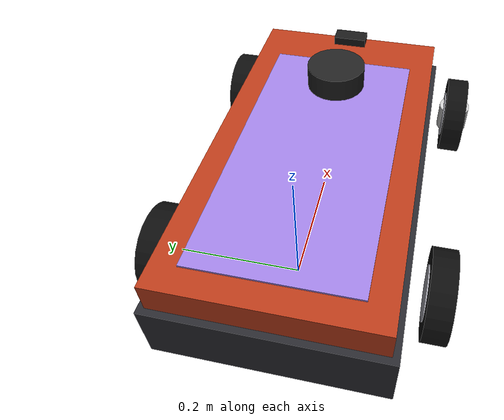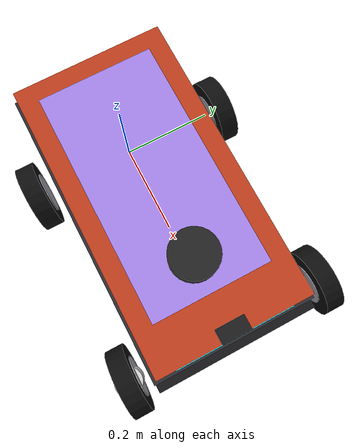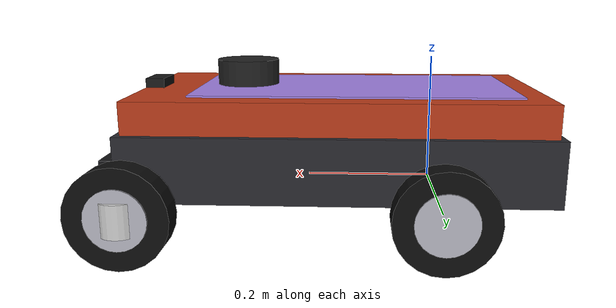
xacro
<?xml version="1.0"?>
<robot name="ackermann_robot" xmlns:xacro="http://www.ros.org/wiki/xacro">

    <xacro:include filename="robot_core_ackermann.xacro" />

    <xacro:include filename="gazebo_control_ackermann.xacro" />

    <xacro:include filename="lidar.xacro" />

    <xacro:include filename="camera.xacro" />

</robot>

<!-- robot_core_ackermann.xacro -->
<robot name="ackermann_robot" xmlns:xacro="http://www.ros.org/wiki/xacro" xmlns:gazebo="http://gazebo.apache.org/xmlns/gazebo">

  <xacro:include filename="inertial_macros.xacro" />

  <!-- Base Link -->
  <link name="base_link"/>
  <link name="base_footprint">
    <collision>
      <geometry>
        <box size="0.65 0.4 0.01"/>
      </geometry>
    </collision>
  </link>

  <joint name="base_footprint_joint" type="fixed">
    <parent link="base_link"/>
    <child link="base_footprint"/>
    <origin xyz="0 0 -0.05"/>
  </joint>

  <!-- Chassis — longer than wide, car-like -->
  <joint name="chassis_joint" type="fixed">
    <parent link="base_link"/>
    <child link="chassis"/>
    <origin xyz="-0.15 0 0"/>
  </joint>

  <link name="chassis">
    <visual>
      <origin xyz="0.3 0 0.05"/>
      <geometry><box size="0.65 0.35 0.10"/></geometry>
      <material name="skirt_material"><color rgba="0.16 0.16 0.18 1.0"/></material>
    </visual>
    <visual>
      <origin xyz="0.3 0 0.125"/>
      <geometry><box size="0.63 0.33 0.05"/></geometry>
      <material name="chassis_material"><color rgba="0.72 0.23 0.10 1.0"/></material>
    </visual>
    <visual>
      <origin xyz="0.27499999999999997 0 0.151"/>
      <geometry><box size="0.50 0.25 0.004"/></geometry>
      <material name="accent_material"><color rgba="0.62 0.50 0.88 1.0"/></material>
    </visual>
    <visual>
      <origin xyz="0.635 0 0.04"/>
      <geometry><box size="0.02 0.35 0.05"/></geometry>
      <material name="bumper_material"><color rgba="0.08 0.08 0.09 1.0"/></material>
    </visual>
    <visual>
      <origin xyz="0.616 0 0.125"/>
      <geometry><box size="0.004 0.25 0.012"/></geometry>
      <material name="led_material"><color rgba="0.1 0.9 1.0 1.0"/></material>
    </visual>
    <collision>
      <origin xyz="0.3 0 0.075"/>
      <geometry>
        <box size="0.65 0.32 0.15"/>
      </geometry>
    </collision>
    <xacro:inertial_box mass="0.6" x="0.65" y="0.35" z="0.15">
      <origin xyz="0.3 0 0.075" rpy="0 0 0"/>
    </xacro:inertial_box>
  </link>

  <!-- Rear Wheels (driven, fixed — no steering) -->
  <joint name="rear_left_wheel_joint" type="continuous">
    <parent link="base_link"/>
    <child link="rear_left_wheel"/>
    <origin xyz="0 0.225 0" rpy="-1.57 0 0"/>
    <axis xyz="0 0 1"/>
  </joint>

  <link name="rear_left_wheel">
    <visual>
      <geometry>
        <cylinder radius="0.075" length="0.04"/>
      </geometry>
      <material name="wheel_material">
        <color rgba="0.05 0.05 0.05 1.0"/>
      </material>
    </visual>
    <visual>
      <geometry><cylinder radius="0.045" length="0.044"/></geometry>
      <material name="hub_material"><color rgba="0.70 0.70 0.74 1.0"/></material>
    </visual>
    <collision>
      <geometry>
        <cylinder radius="0.075" length="0.04"/>
      </geometry>
    </collision>
    <xacro:inertial_cylinder mass="0.1" length="0.04" radius="0.075">
      <origin xyz="0 0 0" rpy="0 0 0"/>
    </xacro:inertial_cylinder>
  </link>

  <joint name="rear_right_wheel_joint" type="continuous">
    <parent link="base_link"/>
    <child link="rear_right_wheel"/>
    <origin xyz="0 -0.225 0" rpy="1.57 0 0"/>
    <axis xyz="0 0 -1"/>
  </joint>

  <link name="rear_right_wheel">
    <visual>
      <geometry>
        <cylinder radius="0.075" length="0.04"/>
      </geometry>
      <material name="wheel_material">
        <color rgba="0.05 0.05 0.05 1.0"/>
      </material>
    </visual>
    <visual>
      <geometry><cylinder radius="0.045" length="0.044"/></geometry>
      <material name="hub_material"><color rgba="0.70 0.70 0.74 1.0"/></material>
    </visual>
    <collision>
      <geometry>
        <cylinder radius="0.075" length="0.04"/>
      </geometry>
    </collision>
    <xacro:inertial_cylinder mass="0.1" length="0.04" radius="0.075">
      <origin xyz="0 0 0" rpy="0 0 0"/>
    </xacro:inertial_cylinder>
  </link>

  <joint name="front_left_steering_joint" type="revolute">
    <parent link="base_link"/>
    <child link="front_left_steering_link"/>
    <origin xyz="0.45 0.225 0"/>
    <axis xyz="0 0 1"/>
    <limit lower="-0.6" upper="0.6" effort="25" velocity="1.0"/>
  </joint>

  <link name="front_left_steering_link">
    <visual>
      <geometry>
        <cylinder radius="0.03" length="0.05"/>
      </geometry>
      <material name="wheel_material">
        <color rgba="0.8 0.8 0.8 1.0"/>
      </material>
    </visual>
    <collision>
      <geometry>
        <cylinder radius="0.03" length="0.05"/>
      </geometry>
    </collision>
    <xacro:inertial_cylinder mass="0.05" length="0.05" radius="0.03">
      <origin xyz="0 0 0" rpy="0 0 0"/>
    </xacro:inertial_cylinder>
  </link>

  <joint name="front_left_wheel_joint" type="continuous">
    <parent link="front_left_steering_link"/>
    <child link="front_left_wheel"/>
    <origin xyz="0 0 0" rpy="-1.57 0 0"/>
    <axis xyz="0 0 1"/>
  </joint>

  <link name="front_left_wheel">
    <visual>
      <geometry>
        <cylinder radius="0.075" length="0.04"/>
      </geometry>
      <material name="wheel_material">
        <color rgba="0.05 0.05 0.05 1.0"/>
      </material>
    </visual>
    <visual>
      <geometry><cylinder radius="0.045" length="0.044"/></geometry>
      <material name="hub_material"><color rgba="0.70 0.70 0.74 1.0"/></material>
    </visual>
    <collision>
      <geometry>
        <cylinder radius="0.075" length="0.04"/>
      </geometry>
    </collision>
    <xacro:inertial_cylinder mass="0.1" length="0.04" radius="0.075">
      <origin xyz="0 0 0" rpy="0 0 0"/>
    </xacro:inertial_cylinder>
  </link>

  <joint name="front_right_steering_joint" type="revolute">
    <parent link="base_link"/>
    <child link="front_right_steering_link"/>
    <origin xyz="0.45 -0.225 0"/>
    <axis xyz="0 0 1"/>
    <limit lower="-0.6" upper="0.6" effort="25" velocity="1.0"/>
  </joint>

  <link name="front_right_steering_link">
    <visual>
      <geometry>
        <cylinder radius="0.03" length="0.05"/>
      </geometry>
      <material name="wheel_material">
        <color rgba="0.8 0.8 0.8 1.0"/>
      </material>
    </visual>
    <collision>
      <geometry>
        <cylinder radius="0.03" length="0.05"/>
      </geometry>
    </collision>
    <xacro:inertial_cylinder mass="0.05" length="0.05" radius="0.03">
      <origin xyz="0 0 0" rpy="0 0 0"/>
    </xacro:inertial_cylinder>
  </link>

  <joint name="front_right_wheel_joint" type="continuous">
    <parent link="front_right_steering_link"/>
    <child link="front_right_wheel"/>
    <origin xyz="0 0 0" rpy="1.57 0 0"/>
    <axis xyz="0 0 -1"/>
  </joint>

  <link name="front_right_wheel">
    <visual>
      <geometry>
        <cylinder radius="0.075" length="0.04"/>
      </geometry>
      <material name="wheel_material">
        <color rgba="0.05 0.05 0.05 1.0"/>
      </material>
    </visual>
    <visual>
      <geometry><cylinder radius="0.045" length="0.044"/></geometry>
      <material name="hub_material"><color rgba="0.70 0.70 0.74 1.0"/></material>
    </visual>
    <collision>
      <geometry>
        <cylinder radius="0.075" length="0.04"/>
      </geometry>
    </collision>
    <xacro:inertial_cylinder mass="0.1" length="0.04" radius="0.075">
      <origin xyz="0 0 0" rpy="0 0 0"/>
    </xacro:inertial_cylinder>
  </link>

  <!-- Gazebo Parameters -->
  <gazebo reference="chassis">
    <mu1>1.0</mu1>
    <mu2>1.0</mu2>
  </gazebo>

  <gazebo reference="rear_left_wheel">
    <mu1>1.0</mu1>
    <mu2>1.0</mu2>
  </gazebo>

  <gazebo reference="rear_right_wheel">
    <mu1>1.0</mu1>
    <mu2>1.0</mu2>
  </gazebo>

  <gazebo reference="front_left_wheel">
    <mu1>1.0</mu1>
    <mu2>1.0</mu2>
  </gazebo>

  <gazebo reference="front_right_wheel">
    <mu1>1.0</mu1>
    <mu2>1.0</mu2>
  </gazebo>

</robot>

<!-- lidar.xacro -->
<robot xmlns:xacro="http://www.ros.org/wiki/xacro" >
   <xacro:arg name="namespace" default=""/>
   <xacro:property name="ns" value="$(arg namespace)"/>
   <joint name="laser_joint" type="fixed">
     <parent link="chassis"/>
     <child link="laser_frame"/>
     <origin xyz="0.45 0 0.175" rpy="0 0 0"/>
   </joint>
   <link name="laser_frame">
      <visual>
         <origin xyz="0 0 0"/>
         <geometry>
            <cylinder length="0.04" radius="0.05"/>
         </geometry>
         <material name="laser_material">
            <color rgba="0.13 0.13 0.13 1.0"/>
         </material>
      </visual>
      <collision>
         <origin xyz="0 0 0"/>
         <geometry>
            <cylinder length="0.04" radius="0.05"/>
         </geometry>
      </collision>
      <xacro:inertial_cylinder mass="0.1" length="0.04" radius="0.05">
         <origin xyz="0 0 0" rpy="0 0 0"/>
      </xacro:inertial_cylinder>
   </link>

   <!-- 2D Lidar New Gazebo Sensor Plugin  -->
   <gazebo reference="laser_frame">
      <sensor name="laser" type="gpu_lidar">
         <pose> 0 0 0 0 0 0 </pose>
         <always_on>true</always_on>
         <visualize>true</visualize>
         <update_rate>10</update_rate>
         <topic>${ns + '/scan' if ns else 'scan'}</topic>
         <gz_frame_id>${ns + '/laser_frame' if ns else 'laser_frame'}</gz_frame_id>
         <lidar>
            <scan>
               <horizontal>
               <samples>360</samples>
               <min_angle>-3.14</min_angle>
               <max_angle>3.14</max_angle>
               </horizontal>
            </scan>
            <range>
               <min>0.3</min>
               <max>12</max>
            </range>
         </lidar>
      </sensor>
   </gazebo>
</robot>

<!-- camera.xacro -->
<robot xmlns:xacro="http://www.ros.org/wiki/xacro">
  <xacro:arg name="namespace" default=""/>
  <xacro:property name="ns" value="$(arg namespace)"/>

  <!-- RGB camera: front-top of chassis, 60° FOV, 640x480 @ 30 Hz -->
  <joint name="camera_joint" type="fixed">
    <parent link="base_link"/>
    <child link="camera_link"/>
    <origin xyz="0.45 0.0 0.15" rpy="0 0 0"/>
  </joint>

  <link name="camera_link">
    <visual>
      <geometry><box size="0.03 0.06 0.03"/></geometry>
      <material name="camera_material">
        <color rgba="0.1 0.1 0.1 1.0"/>
      </material>
    </visual>
    <collision>
      <geometry><box size="0.03 0.06 0.03"/></geometry>
    </collision>
    <xacro:inertial_box mass="0.01" x="0.03" y="0.06" z="0.03">
      <origin xyz="0 0 0" rpy="0 0 0"/>
    </xacro:inertial_box>
  </link>

  <!-- Optical frame: Z forward, X right, Y down (ROS convention) -->
  <joint name="camera_optical_joint" type="fixed">
    <parent link="camera_link"/>
    <child link="camera_optical_frame"/>
    <origin xyz="0 0 0" rpy="-1.5708 0 -1.5708"/>
  </joint>
  <link name="camera_optical_frame"/>

  <gazebo reference="camera_link">
    <sensor name="camera" type="camera">
      <always_on>true</always_on>
      <update_rate>30</update_rate>
      <topic>${ns + '/camera/image_raw' if ns else 'camera/image_raw'}</topic>
      <gz_frame_id>${ns + '/camera_optical_frame' if ns else 'camera_optical_frame'}</gz_frame_id>
      <camera>
        <horizontal_fov>1.047</horizontal_fov>
        <image>
          <width>640</width>
          <height>480</height>
          <format>R8G8B8</format>
        </image>
        <clip>
          <near>0.05</near>
          <far>8.0</far>
        </clip>
        <noise>
          <type>gaussian</type>
          <mean>0.0</mean>
          <stddev>0.007</stddev>
        </noise>
      </camera>
    </sensor>
  </gazebo>

</robot>
